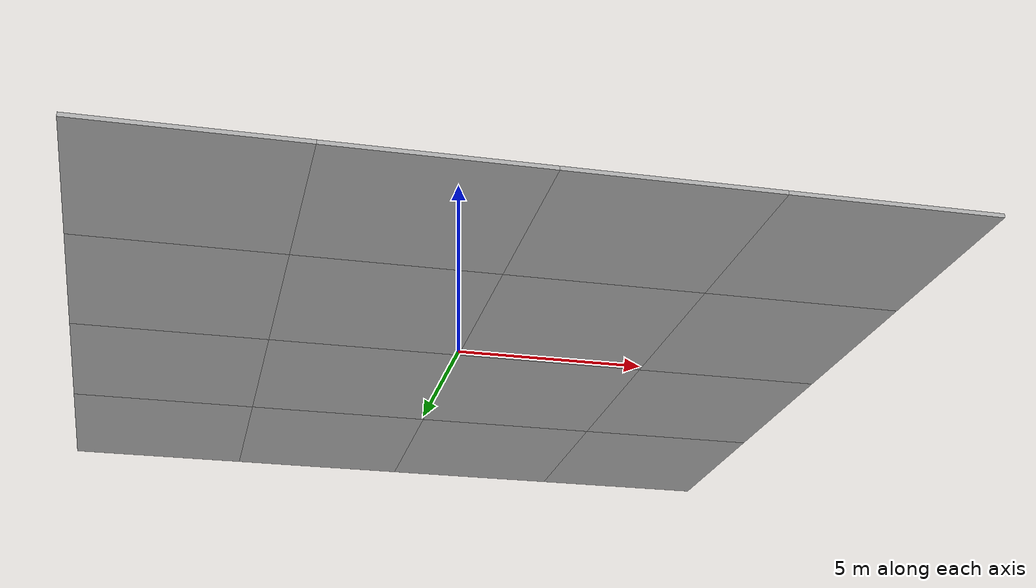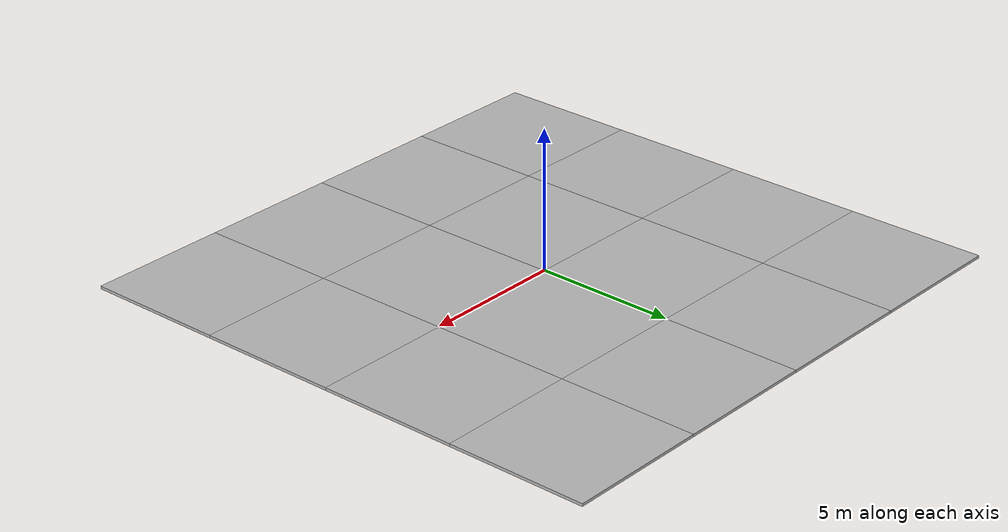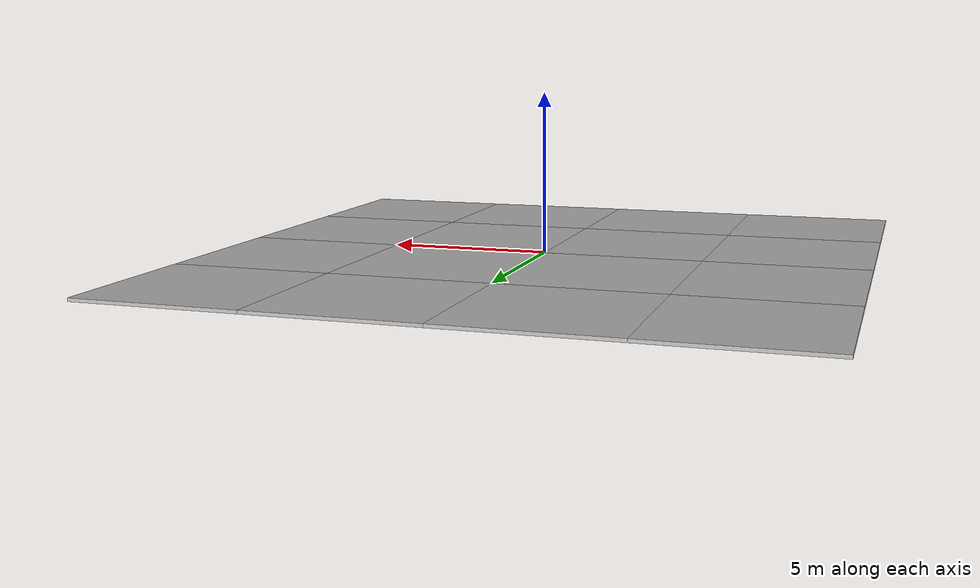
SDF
<?xml version='1.0'?>
<sdf version='1.7'>
  <model name='mud_plane_20x20'>
    <model name='mud_plane'>
      <static>1</static>
      <link name='link'>
        <collision name='collision'>
          <geometry>
            <box>
              <size>10 10 0.1</size>
            </box>
          </geometry>
        </collision>
        <visual name='visual_1'>
          <pose>-2.5 2.5 -0.05 0 -0 0</pose>
          <cast_shadows>0</cast_shadows>
          <geometry>
            <box>
              <size>5 5 0.1</size>
            </box>
          </geometry>
          <material>
            <script>
              <uri>model://mud_plane/materials/scripts</uri>
              <uri>model://mud_plane/materials/textures</uri>
              <name>vrc/mud</name>
            </script>
          </material>
        </visual>
        <visual name='visual_2'>
          <pose>2.5 2.5 -0.05 0 -0 0</pose>
          <cast_shadows>0</cast_shadows>
          <geometry>
            <box>
              <size>5 5 0.1</size>
            </box>
          </geometry>
          <material>
            <script>
              <uri>model://mud_plane/materials/scripts</uri>
              <uri>model://mud_plane/materials/textures</uri>
              <name>vrc/mud</name>
            </script>
          </material>
        </visual>
        <visual name='visual_3'>
          <pose>2.5 -2.5 -0.05 0 -0 0</pose>
          <cast_shadows>0</cast_shadows>
          <geometry>
            <box>
              <size>5 5 0.1</size>
            </box>
          </geometry>
          <material>
            <script>
              <uri>model://mud_plane/materials/scripts</uri>
              <uri>model://mud_plane/materials/textures</uri>
              <name>vrc/mud</name>
            </script>
          </material>
        </visual>
        <visual name='visual_4'>
          <pose>-2.5 -2.5 -0.05 0 -0 0</pose>
          <cast_shadows>0</cast_shadows>
          <geometry>
            <box>
              <size>5 5 0.1</size>
            </box>
          </geometry>
          <material>
            <script>
              <uri>model://mud_plane/materials/scripts</uri>
              <uri>model://mud_plane/materials/textures</uri>
              <name>vrc/mud</name>
            </script>
          </material>
        </visual>
      </link>
      <pose>-4.99986 -4.99991 0 0 -0 0</pose>
    </model>
    <model name='mud_plane_0'>
      <static>1</static>
      <link name='link'>
        <collision name='collision'>
          <geometry>
            <box>
              <size>10 10 0.1</size>
            </box>
          </geometry>
        </collision>
        <visual name='visual_1'>
          <pose>-2.5 2.5 -0.05 0 -0 0</pose>
          <cast_shadows>0</cast_shadows>
          <geometry>
            <box>
              <size>5 5 0.1</size>
            </box>
          </geometry>
          <material>
            <script>
              <uri>model://mud_plane/materials/scripts</uri>
              <uri>model://mud_plane/materials/textures</uri>
              <name>vrc/mud</name>
            </script>
          </material>
        </visual>
        <visual name='visual_2'>
          <pose>2.5 2.5 -0.05 0 -0 0</pose>
          <cast_shadows>0</cast_shadows>
          <geometry>
            <box>
              <size>5 5 0.1</size>
            </box>
          </geometry>
          <material>
            <script>
              <uri>model://mud_plane/materials/scripts</uri>
              <uri>model://mud_plane/materials/textures</uri>
              <name>vrc/mud</name>
            </script>
          </material>
        </visual>
        <visual name='visual_3'>
          <pose>2.5 -2.5 -0.05 0 -0 0</pose>
          <cast_shadows>0</cast_shadows>
          <geometry>
            <box>
              <size>5 5 0.1</size>
            </box>
          </geometry>
          <material>
            <script>
              <uri>model://mud_plane/materials/scripts</uri>
              <uri>model://mud_plane/materials/textures</uri>
              <name>vrc/mud</name>
            </script>
          </material>
        </visual>
        <visual name='visual_4'>
          <pose>-2.5 -2.5 -0.05 0 -0 0</pose>
          <cast_shadows>0</cast_shadows>
          <geometry>
            <box>
              <size>5 5 0.1</size>
            </box>
          </geometry>
          <material>
            <script>
              <uri>model://mud_plane/materials/scripts</uri>
              <uri>model://mud_plane/materials/textures</uri>
              <name>vrc/mud</name>
            </script>
          </material>
        </visual>
      </link>
      <pose>-4.99946 4.99954 0 0 -0 0</pose>
    </model>
    <model name='mud_plane_1'>
      <static>1</static>
      <link name='link'>
        <collision name='collision'>
          <geometry>
            <box>
              <size>10 10 0.1</size>
            </box>
          </geometry>
        </collision>
        <visual name='visual_1'>
          <pose>-2.5 2.5 -0.05 0 -0 0</pose>
          <cast_shadows>0</cast_shadows>
          <geometry>
            <box>
              <size>5 5 0.1</size>
            </box>
          </geometry>
          <material>
            <script>
              <uri>model://mud_plane/materials/scripts</uri>
              <uri>model://mud_plane/materials/textures</uri>
              <name>vrc/mud</name>
            </script>
          </material>
        </visual>
        <visual name='visual_2'>
          <pose>2.5 2.5 -0.05 0 -0 0</pose>
          <cast_shadows>0</cast_shadows>
          <geometry>
            <box>
              <size>5 5 0.1</size>
            </box>
          </geometry>
          <material>
            <script>
              <uri>model://mud_plane/materials/scripts</uri>
              <uri>model://mud_plane/materials/textures</uri>
              <name>vrc/mud</name>
            </script>
          </material>
        </visual>
        <visual name='visual_3'>
          <pose>2.5 -2.5 -0.05 0 -0 0</pose>
          <cast_shadows>0</cast_shadows>
          <geometry>
            <box>
              <size>5 5 0.1</size>
            </box>
          </geometry>
          <material>
            <script>
              <uri>model://mud_plane/materials/scripts</uri>
              <uri>model://mud_plane/materials/textures</uri>
              <name>vrc/mud</name>
            </script>
          </material>
        </visual>
        <visual name='visual_4'>
          <pose>-2.5 -2.5 -0.05 0 -0 0</pose>
          <cast_shadows>0</cast_shadows>
          <geometry>
            <box>
              <size>5 5 0.1</size>
            </box>
          </geometry>
          <material>
            <script>
              <uri>model://mud_plane/materials/scripts</uri>
              <uri>model://mud_plane/materials/textures</uri>
              <name>vrc/mud</name>
            </script>
          </material>
        </visual>
      </link>
      <pose>4.99964 -4.99949 0 0 -0 0</pose>
    </model>
    <model name='mud_plane_2'>
      <static>1</static>
      <link name='link'>
        <collision name='collision'>
          <geometry>
            <box>
              <size>10 10 0.1</size>
            </box>
          </geometry>
        </collision>
        <visual name='visual_1'>
          <pose>-2.5 2.5 -0.05 0 -0 0</pose>
          <cast_shadows>0</cast_shadows>
          <geometry>
            <box>
              <size>5 5 0.1</size>
            </box>
          </geometry>
          <material>
            <script>
              <uri>model://mud_plane/materials/scripts</uri>
              <uri>model://mud_plane/materials/textures</uri>
              <name>vrc/mud</name>
            </script>
          </material>
        </visual>
        <visual name='visual_2'>
          <pose>2.5 2.5 -0.05 0 -0 0</pose>
          <cast_shadows>0</cast_shadows>
          <geometry>
            <box>
              <size>5 5 0.1</size>
            </box>
          </geometry>
          <material>
            <script>
              <uri>model://mud_plane/materials/scripts</uri>
              <uri>model://mud_plane/materials/textures</uri>
              <name>vrc/mud</name>
            </script>
          </material>
        </visual>
        <visual name='visual_3'>
          <pose>2.5 -2.5 -0.05 0 -0 0</pose>
          <cast_shadows>0</cast_shadows>
          <geometry>
            <box>
              <size>5 5 0.1</size>
            </box>
          </geometry>
          <material>
            <script>
              <uri>model://mud_plane/materials/scripts</uri>
              <uri>model://mud_plane/materials/textures</uri>
              <name>vrc/mud</name>
            </script>
          </material>
        </visual>
        <visual name='visual_4'>
          <pose>-2.5 -2.5 -0.05 0 -0 0</pose>
          <cast_shadows>0</cast_shadows>
          <geometry>
            <box>
              <size>5 5 0.1</size>
            </box>
          </geometry>
          <material>
            <script>
              <uri>model://mud_plane/materials/scripts</uri>
              <uri>model://mud_plane/materials/textures</uri>
              <name>vrc/mud</name>
            </script>
          </material>
        </visual>
      </link>
      <pose>4.99967 4.99986 0 0 -0 0</pose>
    </model>
    <static>0</static>
    <allow_auto_disable>1</allow_auto_disable>
  </model>
</sdf>
